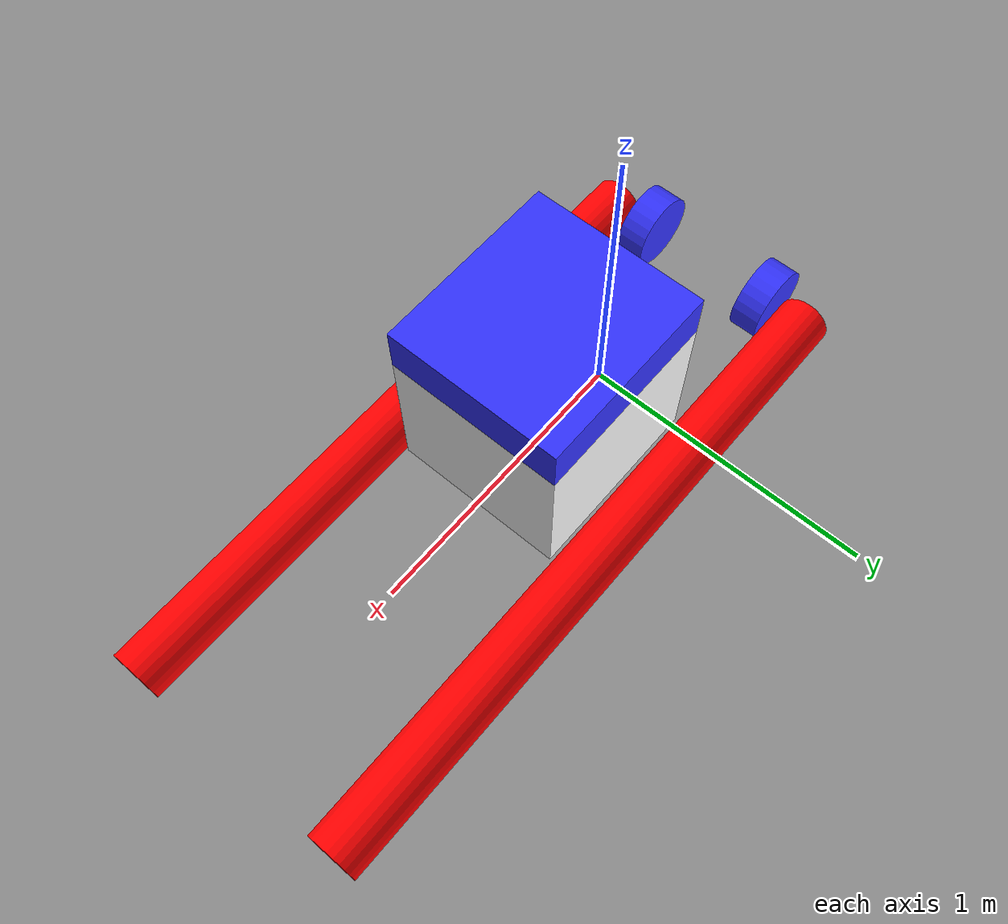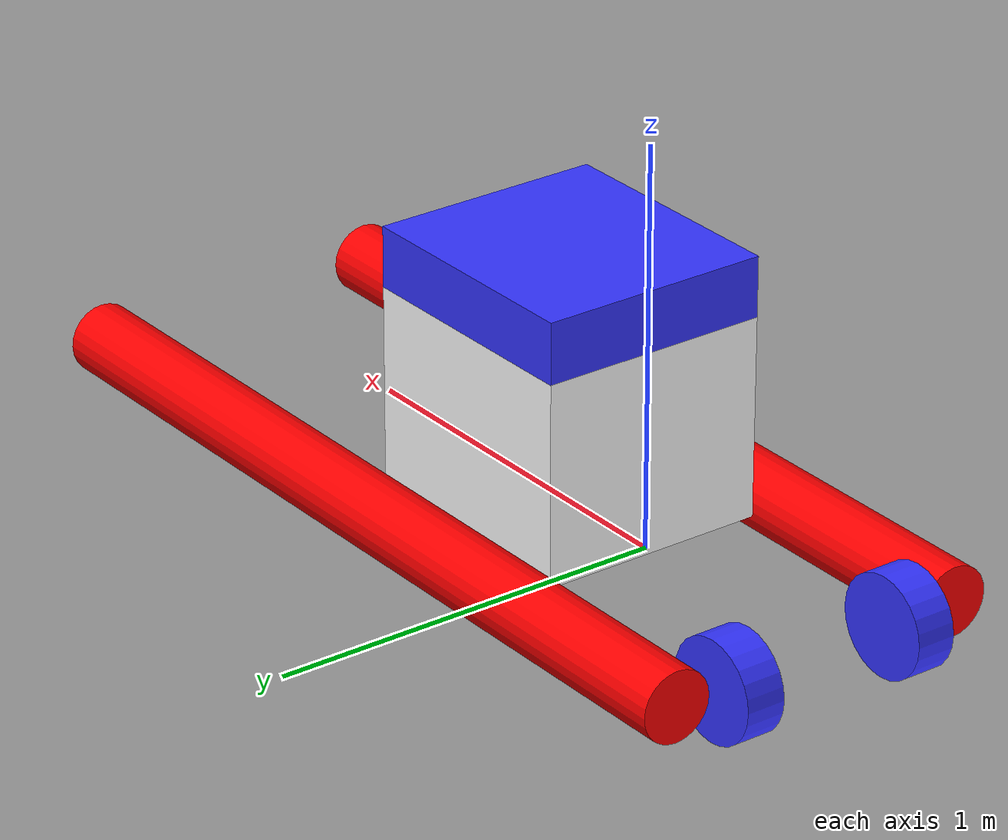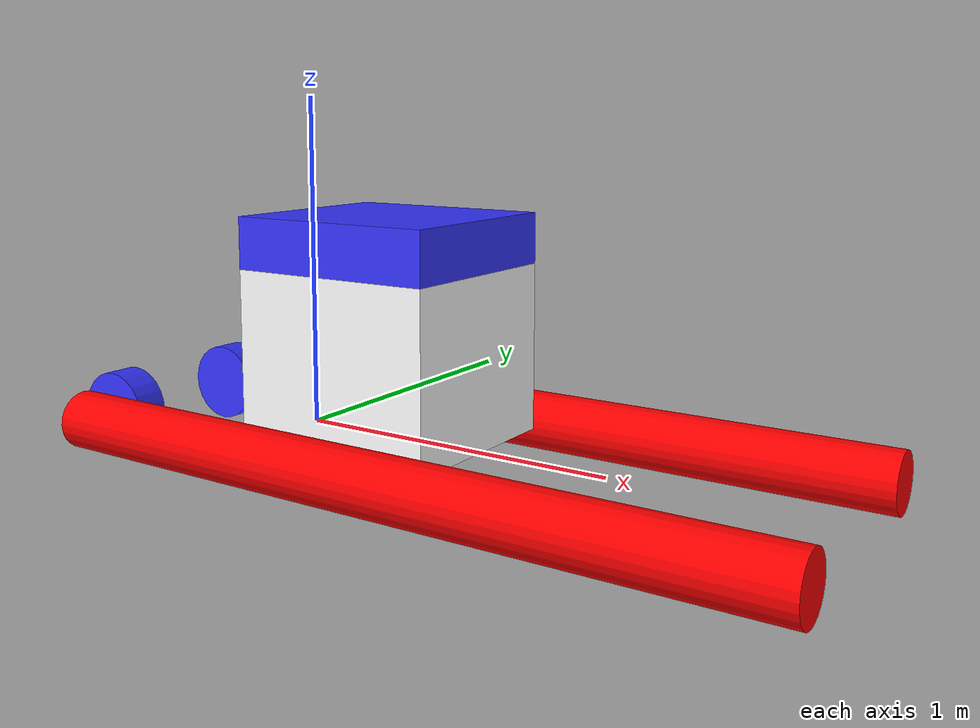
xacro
<?xml version="1.0"?>
<robot xmlns:xacro="http://www.ros.org/wiki/xacro"  name="robot">

    <xacro:include filename="inertial_macros.xacro" />

    <material name="white">
        <color rgba="1 1 1 1" />
    </material>

    <material name="orange">
        <color rgba="1 0.3 0.3 1" />
    </material>

    <material name="blue">
        <color rgba="0.2 0.2 1 1" />
    </material>

    <material name="black">
        <color rgba="0 0 0 1" />
    </material>

    <material name="red">
        <color rgba="1 0 0 1" />
    </material>

    <link name="base_link">

    </link>

    <joint name="chassis_joint" type="fixed">
        <parent link="base_link"/>
        <child link="chassis"/>
        <origin xyz="-0.7305 0 0"/>
    </joint>

    <link name="chassis">
        <visual>
        <origin xyz="1.0225 0 0.254"/>
            <geometry>
                <box size="0.635 0.584 0.508"/>
            </geometry>
            <material name="white"/>
        </visual>

        <collision>
            <origin xyz="1.0225 0 0.254" rpy="0 0 0"/>
            <geometry>
                <box size="0.635 0.584 0.508"/>
            </geometry>
        </collision>

        <xacro:inertial_box mass="0.5" x="0.635" y="0.584" z="0.508">
            <origin xyz="1.0225 0 0.254" rpy="0 0 0"/>
        </xacro:inertial_box>

    </link>

    <joint name="component_joint" type="fixed">
        <parent link="chassis"/>
        <child link="component"/>
        <origin xyz="0 0 0.5842"/>
    </joint>

    <link name="component">
        <visual>
        <origin xyz="1.0225 0 0"/>
            <geometry>
                <box size="0.635 0.584 0.1524"/>
            </geometry>
            <material name="blue"/>
        </visual>

         <collision>
            <origin xyz="1.0225 0 0"/>
            <geometry>
                <box size="0.635 0.584 0.1524"/>
            </geometry>
        </collision>

        <xacro:inertial_box mass="0.1" x="0.635" y=".584" z=".1524">
                <origin xyz="1.0225 0 0" rpy="0 0 0"/>
        </xacro:inertial_box>

    </link>

    <gazebo reference="chassis">
    <material>Gazebo/White</material>
    </gazebo>

       <!-- LEFT FLOAT LINK -->

    <joint name="left_float_joint" type="fixed">
        <parent link="chassis"/>
        <child link="left_float" />
         <origin xyz="0 0 0" rpy="0 -${pi/2} 0" />
    </joint>

    <link name="left_float">
        <visual>
         <origin xyz="0 0.3937 -1.2573"/>
            <geometry>
                <cylinder radius="0.0889" length="2.27965" />
            </geometry>
            <material name="red"/>
        </visual>

        <collision>
            <origin xyz="0 0.3937 -1.2573"/>
            <geometry>
                 <cylinder radius="0.0889" length="2.27965" />
            </geometry>
        </collision>

         <xacro:inertial_cylinder mass="0.1" radius="0.0889" length="2.27965" >
                <origin xyz="0 0.3937 -1.2573" rpy="0 -${pi/2} 0"/>
        </xacro:inertial_cylinder>

    </link>

           <!-- RIGHT FLOAT LINK -->

    <joint name="right_float_joint" type="fixed">
        <parent link="chassis"/>
        <child link="right_float" />
        <origin xyz="0 0 0" rpy="0 -${pi/2} 0" />
    </joint>

    <link name="right_float">
        <visual>
         <origin xyz="0 -0.3937 -1.2573"/>
            <geometry>
                <cylinder radius="0.0889" length="2.27965" />
            </geometry>
            <material name="red"/>
        </visual>
         <collision>
            <origin xyz="0 -0.3937 -1.2573"/>
            <geometry>
                 <cylinder radius="0.0889" length="2.27965" />
            </geometry>
        </collision>

         <xacro:inertial_cylinder mass="0.1" radius="0.0889" length="2.27965" >
                <origin xyz="0 -0.3937 -1.2573" rpy="0 -${pi/2} 0"/>
        </xacro:inertial_cylinder>
    </link>

    <joint name="left_wheel_joint" type="continuous">
        <parent link="chassis"/>
        <child link="left_wheel"/>
        <origin xyz="0.127 0.2411 0" rpy="-${pi/2} 0 0"/>
        <axis xyz="0 0 1"/>
    </joint>

    <link name="left_wheel">
    <visual>
        <geometry>
            <cylinder length="0.1" radius="0.127" />
        </geometry>
        <material name="blue"/>
    </visual>

    <collision>
        <geometry>
            <sphere  radius="0.127" />
        </geometry>
    </collision>

    <xacro:inertial_sphere mass="0.1"  radius="0.127">
       <origin xyz="0 0 0" rpy="0 0 0"/>
    </xacro:inertial_sphere>

    </link>

    <joint name="right_wheel_joint" type="continuous">
        <parent link="chassis"/>
        <child link="right_wheel"/>
        <origin xyz="0.127 -0.2411 0" rpy="${pi/2} 0 0"/>
        <axis xyz="0 0 -1"/>
    </joint>

    <link name="right_wheel">
    <visual>
        <geometry>
            <cylinder length="0.1" radius="0.127" />
        </geometry>
        <material name="blue"/>
    </visual>

    <collision>
        <geometry>
            <sphere  radius="0.127" />
        </geometry>
    </collision>

    <xacro:inertial_sphere mass="0.1"  radius="0.127">
       <origin xyz="0 0 0" rpy="0 0 0"/>
    </xacro:inertial_sphere>

    </link>

<!-- CASTER WHEEL -->

<joint name="caster_wheel_joint" type="continuous">
    <parent link="chassis"/>
    <child link="caster_wheel"/>
    <origin xyz="1.0225 0 0" rpy="0 0 0"/>
</joint>

<link name="caster_wheel">
    <visual>
        <geometry>
            <sphere radius="0.127" />
        </geometry>
        <material name="black"/>
    </visual>

    <collision>
        <geometry>
            <sphere  radius="0.127" />
        </geometry>
    </collision>

    <xacro:inertial_sphere mass="0.05" radius="0.127">
        <origin xyz="0 0 0" rpy="0 0 0"/>
    </xacro:inertial_sphere>
</link>

<gazebo reference="caster_wheel">
    <material>Gazebo/Black</material>
    <mu1 value="0.001"/>
    <mu2 value="0.001"/>
</gazebo>

</robot>
